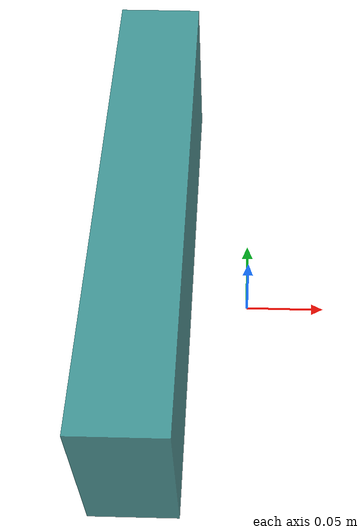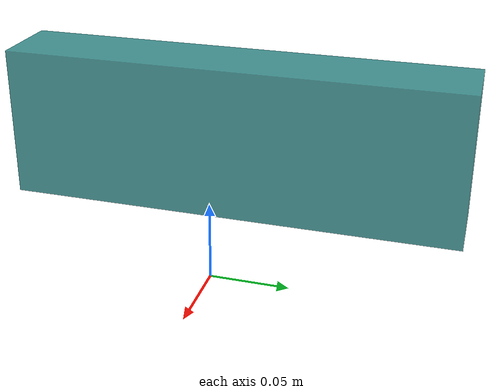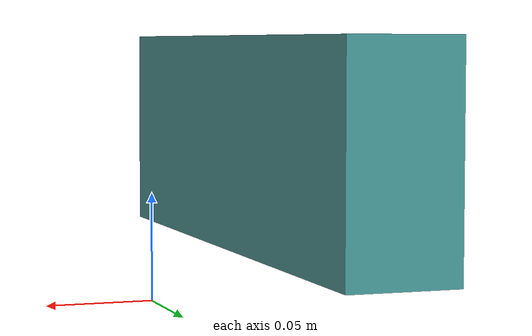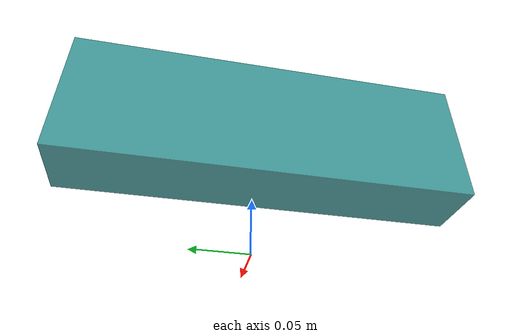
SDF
<?xml version="1.0"?>

<!--
  The cube has side length 7cm.
  The cube is connected to world with a planar joint.
  (https://github.com/pangtao22/quasistatic_simulator)
-->

<sdf version="1.7">
  <model name="cube_planar">

    <joint name="world_cube_offset" type="fixed">
      <child>cube_root</child>
      <parent>world</parent>
      <axis>
        <limit>
          <effort>0</effort>
        </limit>
      </axis>
    </joint>

    <link name="cube_root">
      <pose relative_to="__model__">-0.06 0.0 0.073 0 0 0</pose>
    </link>

    <link name="cube_ghost_link_x" />
    <link name="cube_ghost_link_z" />

    <joint name="joint_y" type="prismatic">
      <parent>cube_root</parent>
      <child>cube_ghost_link_z</child>
      <axis>
        <limit>
          <lower>-0.1</lower>
          <upper>0.1</upper>
        </limit>
        <xyz>0 1 0</xyz>
      </axis>
    </joint>

    <joint name="joint_z" type="prismatic">
      <parent>cube_ghost_link_z</parent>
      <child>cube_ghost_link_x</child>
      <axis>
        <limit>
          <lower>-0.05</lower>
          <upper>0.05</upper>
        </limit>
        <xyz>0 0 1</xyz>
      </axis>
    </joint>

    <joint name="joint_x" type="revolute">
      <parent>cube_ghost_link_x</parent>
      <child>cube_link</child>
      <axis>
        <xyz>1 0 0</xyz>
      </axis>
    </joint>

    <link name="cube_link">
      <pose relative_to="cube_root">0 0 0 0 0 0</pose>
      <inertial>
        <mass>100.0</mass>
        <inertia>
          <ixx>0.01</ixx>
          <ixy>0</ixy>
          <ixz>0</ixz>
          <iyy>0.01</iyy>
          <iyz>0</iyz>
          <izz>0.01</izz>
        </inertia>
      </inertial>

      <visual name="visual">
        <geometry>
          <box>
            <size> 0.05 0.3 0.1 </size>
          </box>
        </geometry>
        <material>
          <diffuse>0.1 0.5 0.5 0.8</diffuse>
        </material>
      </visual>

      <collision name="collision">
        <geometry>
          <box>
            <size> 0.05 0.3 0.1 </size>
          </box>
        </geometry>
        <surface>
          <friction>
            <ode>
              <mu>1.0</mu>
              <mu2>1.0</mu2>
            </ode>
          </friction>
        </surface>
      </collision>

    </link>

  </model>
</sdf>
